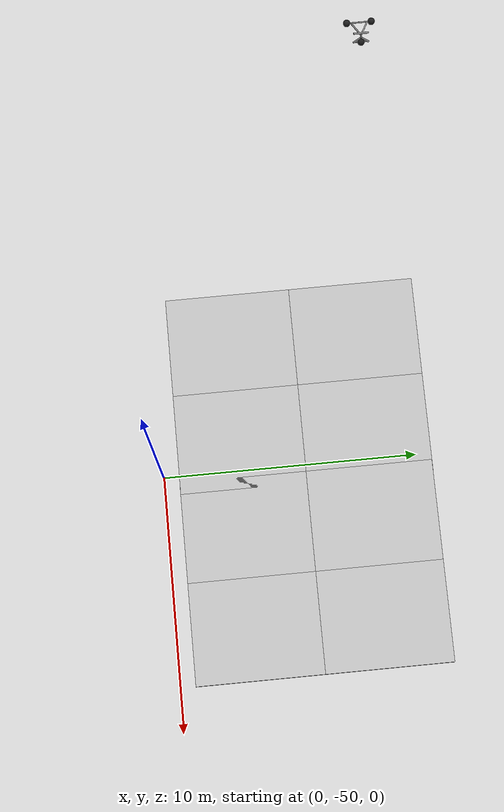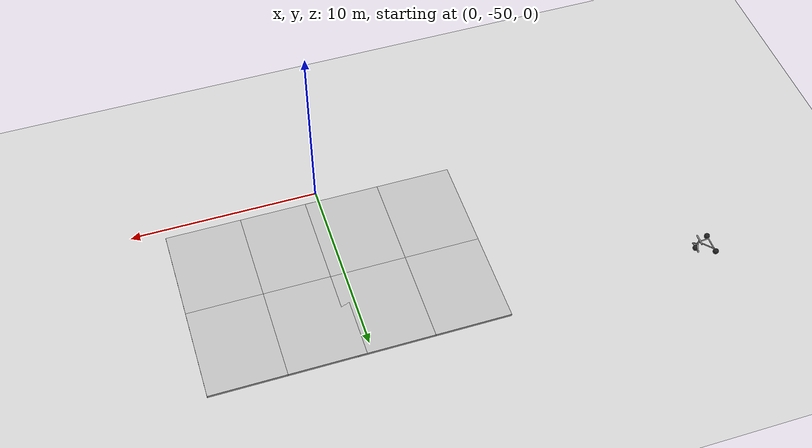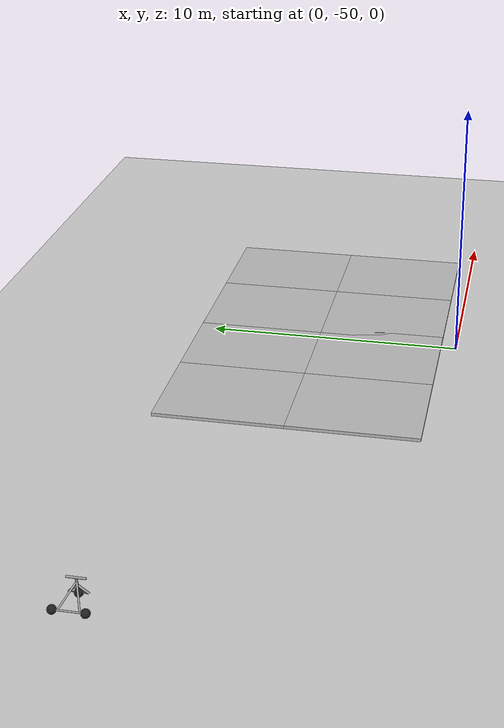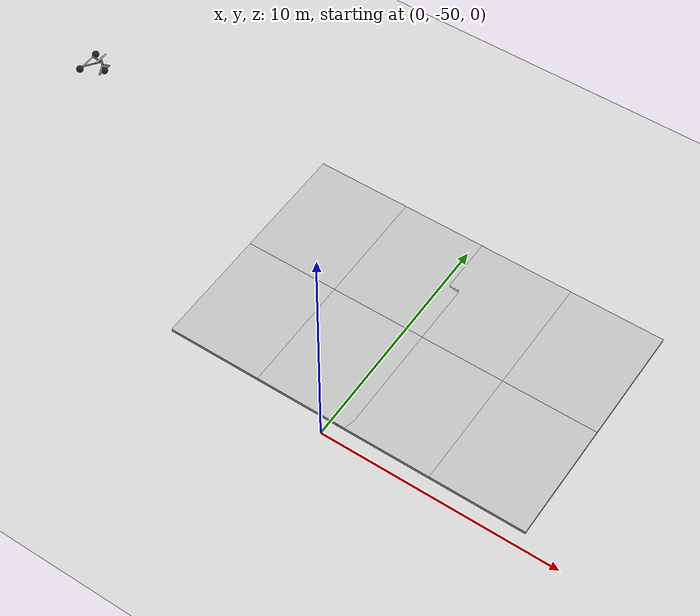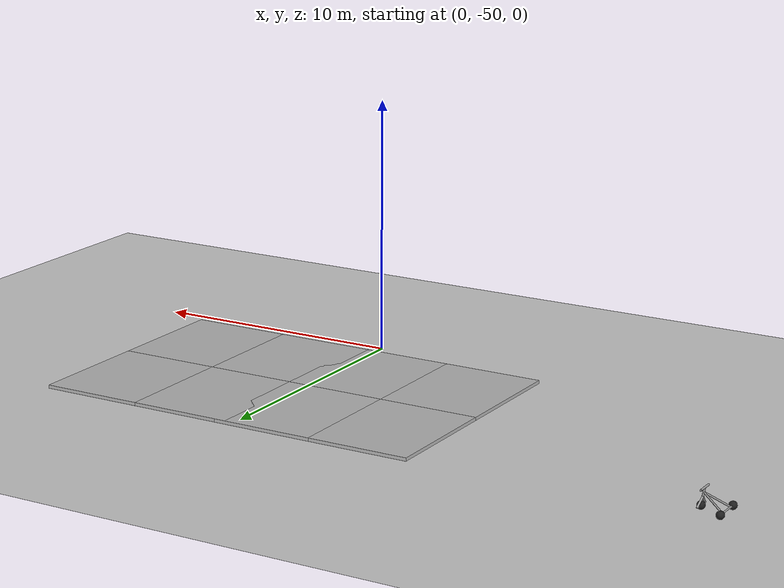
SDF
<sdf version="1.6">
 <world name="default">
  <light name="sun" type="directional">
   <pose>0 0 10 0 -0 0</pose>
   <diffuse>0.8 0.8 0.8 1</diffuse>
   <specular>0.2 0.2 0.2 1</specular>
   <attenuation>
    <range>1000</range>
    <constant>0.9</constant>
    <linear>0.01</linear>
    <quadratic>0.001</quadratic>
   </attenuation>
   <direction>-0.5 0.1 -0.9</direction>
  </light>
  <model name="ground_plane">
   <static>1</static>
   <link name="link">
    <collision name="collision">
     <geometry><plane><normal>0 0 1</normal><size>100 100</size></plane></geometry>
     <surface><friction><ode><mu>100</mu><mu2>50</mu2></ode></friction></surface>
    </collision>
    <visual name="visual">
     <cast_shadows>0</cast_shadows>
     <geometry><plane><normal>0 0 1</normal><size>100 100</size></plane></geometry>
     <material>
      <script><uri>file://media/materials/scripts/gazebo.material</uri><name>Gazebo/Grey</name></script>
     </material>
    </visual>
   </link>
  </model>
  <gravity>0 0 -9.8</gravity>
  <magnetic_field>6e-06 2.3e-05 -4.2e-05</magnetic_field>
  <atmosphere type="adiabatic"/>
  <physics name="default_physics" default="0" type="ode">
   <max_step_size>0.001</max_step_size>
   <real_time_factor>1</real_time_factor>
   <real_time_update_rate>1000</real_time_update_rate>
  </physics>
  <scene><ambient>0.4 0.4 0.4 1</ambient><background>0.7 0.7 0.7 1</background><shadows>1</shadows></scene>
  <audio><device>default</device></audio>
  <spherical_coordinates>
   <surface_model>EARTH_WGS84</surface_model>
   <latitude_deg>0</latitude_deg>
   <longitude_deg>0</longitude_deg>
   <elevation>0</elevation>
   <heading_deg>0</heading_deg>
  </spherical_coordinates>
  <model name="mud_box">
   <static>1</static>
   <link name="link">
    <collision name="collision"><geometry><box><size>8 10 0.2</size></box></geometry></collision>
    <visual name="visual_1">
     <pose>-2 2.5 0 0 -0 0</pose>
     <cast_shadows>0</cast_shadows>
     <geometry><box><size>4 5 0.2</size></box></geometry>
     <material>
      <script>
       <uri>model://mud_box/materials/scripts</uri>
       <uri>model://mud_box/materials/textures</uri>
       <name>vrc/mud</name>
      </script>
     </material>
    </visual>
    <visual name="visual_2">
     <pose>2 2.5 0 0 -0 0</pose>
     <cast_shadows>0</cast_shadows>
     <geometry><box><size>4 5 0.2</size></box></geometry>
     <material>
      <script>
       <uri>model://mud_box/materials/scripts</uri>
       <uri>model://mud_box/materials/textures</uri>
       <name>vrc/mud</name>
      </script>
     </material>
    </visual>
    <visual name="visual_3">
     <pose>2 -2.5 0 0 -0 0</pose>
     <cast_shadows>0</cast_shadows>
     <geometry><box><size>4 5 0.2</size></box></geometry>
     <material>
      <script>
       <uri>model://mud_box/materials/scripts</uri>
       <uri>model://mud_box/materials/textures</uri>
       <name>vrc/mud</name>
      </script>
     </material>
    </visual>
    <visual name="visual_4">
     <pose>-2 -2.5 0 0 -0 0</pose>
     <cast_shadows>0</cast_shadows>
     <geometry><box><size>4 5 0.2</size></box></geometry>
     <material>
      <script>
       <uri>model://mud_box/materials/scripts</uri>
       <uri>model://mud_box/materials/textures</uri>
       <name>vrc/mud</name>
      </script>
     </material>
    </visual>
   </link>
   <pose>-3.26445 -44.3979 0 0 -0 0</pose>
  </model>
  <model name="mud_box_0">
   <static>1</static>
   <link name="link">
    <collision name="collision"><geometry><box><size>8 10 0.2</size></box></geometry></collision>
    <visual name="visual_1">
     <pose>-2 2.5 0 0 -0 0</pose>
     <cast_shadows>0</cast_shadows>
     <geometry><box><size>4 5 0.2</size></box></geometry>
     <material>
      <script>
       <uri>model://mud_box/materials/scripts</uri>
       <uri>model://mud_box/materials/textures</uri>
       <name>vrc/mud</name>
      </script>
     </material>
    </visual>
    <visual name="visual_2">
     <pose>2 2.5 0 0 -0 0</pose>
     <cast_shadows>0</cast_shadows>
     <geometry><box><size>4 5 0.2</size></box></geometry>
     <material>
      <script>
       <uri>model://mud_box/materials/scripts</uri>
       <uri>model://mud_box/materials/textures</uri>
       <name>vrc/mud</name>
      </script>
     </material>
    </visual>
    <visual name="visual_3">
     <pose>2 -2.5 0 0 -0 0</pose>
     <cast_shadows>0</cast_shadows>
     <geometry><box><size>4 5 0.2</size></box></geometry>
     <material>
      <script>
       <uri>model://mud_box/materials/scripts</uri>
       <uri>model://mud_box/materials/textures</uri>
       <name>vrc/mud</name>
      </script>
     </material>
    </visual>
    <visual name="visual_4">
     <pose>-2 -2.5 0 0 -0 0</pose>
     <cast_shadows>0</cast_shadows>
     <geometry><box><size>4 5 0.2</size></box></geometry>
     <material>
      <script>
       <uri>model://mud_box/materials/scripts</uri>
       <uri>model://mud_box/materials/textures</uri>
       <name>vrc/mud</name>
      </script>
     </material>
    </visual>
   </link>
   <pose>4.27535 -44.404 0 0 -0 0</pose>
  </model>
  <model name="trisphere_cycle">
   <link name="frame">
    <pose>-0.408559 0 0.385023 0 -0.522021 0</pose>
    <inertial>
     <mass>10</mass>
     <inertia><ixx>0.228</ixx><iyy>0.743521</iyy><izz>0.965521</izz><ixy>0</ixy><ixz>0</ixz><iyz>0</iyz></inertia>
    </inertial>
    <collision name="axle_collision">
     <pose>-0.471335 0 0 1.5708 -0 0</pose>
     <geometry><cylinder><length>1.03923</length><radius>0.03</radius></cylinder></geometry>
    </collision>
    <visual name="axle_visual">
     <pose>-0.471335 0 0 1.5708 -0 0</pose>
     <geometry><cylinder><length>1.03923</length><radius>0.03</radius></cylinder></geometry>
     <material>
      <script><uri>file://media/materials/scripts/gazebo.material</uri><name>Gazebo/Grey</name></script>
     </material>
    </visual>
    <collision name="frame_left_collision">
     <pose>0 0.171552 0 -2.79253 1.57079 3.14159</pose>
     <geometry><cylinder><length>1.00317</length><radius>0.03</radius></cylinder></geometry>
    </collision>
    <visual name="frame_left_visual">
     <pose>0 0.171552 0 -2.79253 1.57079 3.14159</pose>
     <geometry><cylinder><length>1.00317</length><radius>0.03</radius></cylinder></geometry>
     <material>
      <script><uri>file://media/materials/scripts/gazebo.material</uri><name>Gazebo/Grey</name></script>
     </material>
    </visual>
    <collision name="frame_right_collision">
     <pose>0 -0.171552 0 2.79253 1.57079 -3.14159</pose>
     <geometry><cylinder><length>1.00317</length><radius>0.03</radius></cylinder></geometry>
    </collision>
    <visual name="frame_right_visual">
     <pose>0 -0.171552 0 2.79253 1.57079 -3.14159</pose>
     <geometry><cylinder><length>1.00317</length><radius>0.03</radius></cylinder></geometry>
     <material>
      <script><uri>file://media/materials/scripts/gazebo.material</uri><name>Gazebo/Grey</name></script>
     </material>
    </visual>
   </link>
   <link name="fork">
    <pose>0.041441 0 0.385023 0 -0.174533 0</pose>
    <inertial>
     <mass>3</mass>
     <inertia>
      <ixx>0.158203</ixx>
      <iyy>0.0583594</iyy>
      <izz>0.102656</izz>
      <ixy>0</ixy>
      <ixz>0</ixz>
      <iyz>0</iyz>
     </inertia>
    </inertial>
    <collision name="handlebars_collision">
     <pose>0 0 0.397748 1.5708 -0 0</pose>
     <geometry><cylinder><length>0.636396</length><radius>0.0375</radius></cylinder></geometry>
    </collision>
    <visual name="handlebars_visual">
     <pose>0 0 0.397748 1.5708 -0 0</pose>
     <geometry><cylinder><length>0.636396</length><radius>0.0375</radius></cylinder></geometry>
     <material>
      <script><uri>file://media/materials/scripts/gazebo.material</uri><name>Gazebo/Grey</name></script>
     </material>
    </visual>
    <collision name="headtube_collision">
     <pose>0 0 0.238649 0 -0 0</pose>
     <geometry><cylinder><length>0.318198</length><radius>0.0375</radius></cylinder></geometry>
    </collision>
    <visual name="headtube_visual">
     <pose>0 0 0.238649 0 -0 0</pose>
     <geometry><cylinder><length>0.318198</length><radius>0.0375</radius></cylinder></geometry>
     <material>
      <script><uri>file://media/materials/scripts/gazebo.material</uri><name>Gazebo/Grey</name></script>
     </material>
    </visual>
    <collision name="spindle_collision">
     <pose>0 0 -0.238649 1.5708 -0 0</pose>
     <geometry><cylinder><length>0.636396</length><radius>0.015</radius></cylinder></geometry>
    </collision>
    <visual name="spindle_visual">
     <pose>0 0 -0.238649 1.5708 -0 0</pose>
     <geometry><cylinder><length>0.636396</length><radius>0.015</radius></cylinder></geometry>
     <material>
      <script><uri>file://media/materials/scripts/gazebo.material</uri><name>Gazebo/Grey</name></script>
     </material>
    </visual>
    <collision name="fork_left_collision">
     <pose>0 0.159099 -0.07955 0.785398 -0 0</pose>
     <geometry><cylinder><length>0.45</length><radius>0.0375</radius></cylinder></geometry>
    </collision>
    <visual name="fork_left_visual">
     <pose>0 0.159099 -0.07955 0.785398 -0 0</pose>
     <geometry><cylinder><length>0.45</length><radius>0.0375</radius></cylinder></geometry>
     <material>
      <script><uri>file://media/materials/scripts/gazebo.material</uri><name>Gazebo/Grey</name></script>
     </material>
    </visual>
    <collision name="fork_right_collision">
     <pose>0 -0.159099 -0.07955 -0.785398 0 0</pose>
     <geometry><cylinder><length>0.45</length><radius>0.0375</radius></cylinder></geometry>
    </collision>
    <visual name="fork_right_visual">
     <pose>0 -0.159099 -0.07955 -0.785398 0 0</pose>
     <geometry><cylinder><length>0.45</length><radius>0.0375</radius></cylinder></geometry>
     <material>
      <script><uri>file://media/materials/scripts/gazebo.material</uri><name>Gazebo/Grey</name></script>
     </material>
    </visual>
   </link>
   <link name="wheel_front">
    <pose>0.082882 0 0.15 0 -0 0</pose>
    <inertial>
     <mass>0.5</mass>
     <inertia><ixx>0.0045</ixx><iyy>0.0045</iyy><izz>0.0045</izz><ixy>0</ixy><ixz>0</ixz><iyz>0</iyz></inertia>
    </inertial>
    <collision name="collision">
     <geometry><sphere><radius>0.15</radius></sphere></geometry>
     <surface><contact><ode><kp>1e+08</kp><kd>1</kd><min_depth>0.0005</min_depth></ode></contact></surface>
    </collision>
    <visual name="visual">
     <geometry><sphere><radius>0.15</radius></sphere></geometry>
     <material>
      <script><uri>file://media/materials/scripts/gazebo.material</uri><name>Gazebo/Black</name></script>
     </material>
    </visual>
   </link>
   <joint name="wheel_front_steer" type="revolute">
    <parent>frame</parent>
    <child>fork</child>
    <axis>
     <xyz>0 0 1</xyz>
     <limit><lower>-0.959931</lower><upper>0.959931</upper></limit>
     <use_parent_model_frame>0</use_parent_model_frame>
     <dynamics><spring_reference>0</spring_reference><spring_stiffness>0</spring_stiffness></dynamics>
    </axis>
   </joint>
   <joint name="wheel_front_spin" type="revolute">
    <parent>fork</parent>
    <child>wheel_front</child>
    <axis>
     <xyz>0 1 0</xyz>
     <use_parent_model_frame>0</use_parent_model_frame>
     <limit><lower>-1e+16</lower><upper>1e+16</upper></limit>
     <dynamics><spring_reference>0</spring_reference><spring_stiffness>0</spring_stiffness></dynamics>
    </axis>
   </joint>
   <link name="wheel_rear_left">
    <pose>-0.817118 0.519615 0.15 0 -0 0</pose>
    <inertial>
     <mass>0.5</mass>
     <inertia><ixx>0.0045</ixx><iyy>0.0045</iyy><izz>0.0045</izz><ixy>0</ixy><ixz>0</ixz><iyz>0</iyz></inertia>
    </inertial>
    <collision name="collision">
     <geometry><sphere><radius>0.15</radius></sphere></geometry>
     <surface><contact><ode><kp>1e+08</kp><kd>1</kd><min_depth>0.0005</min_depth></ode></contact></surface>
    </collision>
    <visual name="visual">
     <geometry><sphere><radius>0.15</radius></sphere></geometry>
     <material>
      <script><uri>file://media/materials/scripts/gazebo.material</uri><name>Gazebo/Black</name></script>
     </material>
    </visual>
   </link>
   <joint name="wheel_rear_left_spin" type="revolute">
    <parent>frame</parent>
    <child>wheel_rear_left</child>
    <axis>
     <xyz>0 1 0</xyz>
     <use_parent_model_frame>0</use_parent_model_frame>
     <limit><lower>-1e+16</lower><upper>1e+16</upper></limit>
     <dynamics><spring_reference>0</spring_reference><spring_stiffness>0</spring_stiffness></dynamics>
    </axis>
   </joint>
   <link name="wheel_rear_right">
    <pose>-0.817118 -0.519615 0.15 0 -0 0</pose>
    <inertial>
     <mass>0.5</mass>
     <inertia><ixx>0.0045</ixx><iyy>0.0045</iyy><izz>0.0045</izz><ixy>0</ixy><ixz>0</ixz><iyz>0</iyz></inertia>
    </inertial>
    <collision name="collision">
     <geometry><sphere><radius>0.15</radius></sphere></geometry>
     <surface><contact><ode><kp>1e+08</kp><kd>1</kd><min_depth>0.0005</min_depth></ode></contact></surface>
    </collision>
    <visual name="visual">
     <geometry><sphere><radius>0.15</radius></sphere></geometry>
     <material>
      <script><uri>file://media/materials/scripts/gazebo.material</uri><name>Gazebo/Black</name></script>
     </material>
    </visual>
   </link>
   <joint name="wheel_rear_right_spin" type="revolute">
    <parent>frame</parent>
    <child>wheel_rear_right</child>
    <axis>
     <xyz>0 1 0</xyz>
     <use_parent_model_frame>0</use_parent_model_frame>
     <limit><lower>-1e+16</lower><upper>1e+16</upper></limit>
     <dynamics><spring_reference>0</spring_reference><spring_stiffness>0</spring_stiffness></dynamics>
    </axis>
   </joint>
   <pose>-17.8818 -40.3546 -0.000501 -0 1e-06 -0.00113</pose>
  </model>
 </world>
</sdf>
